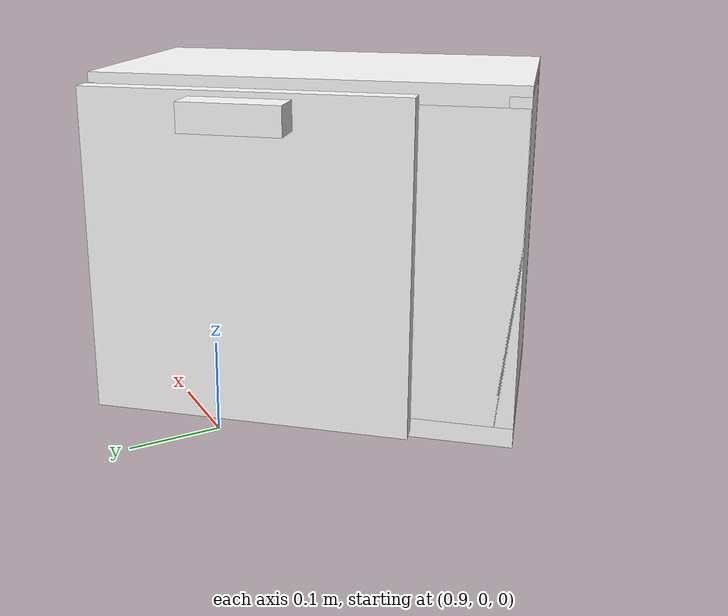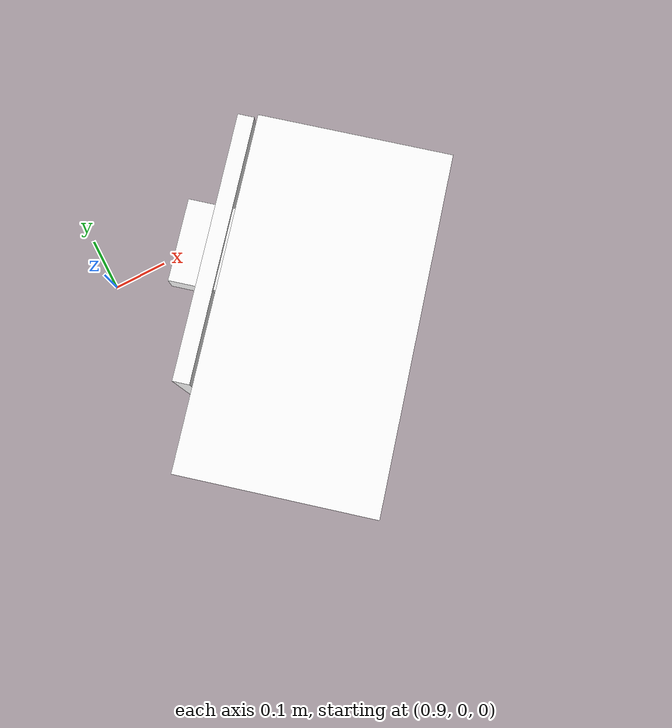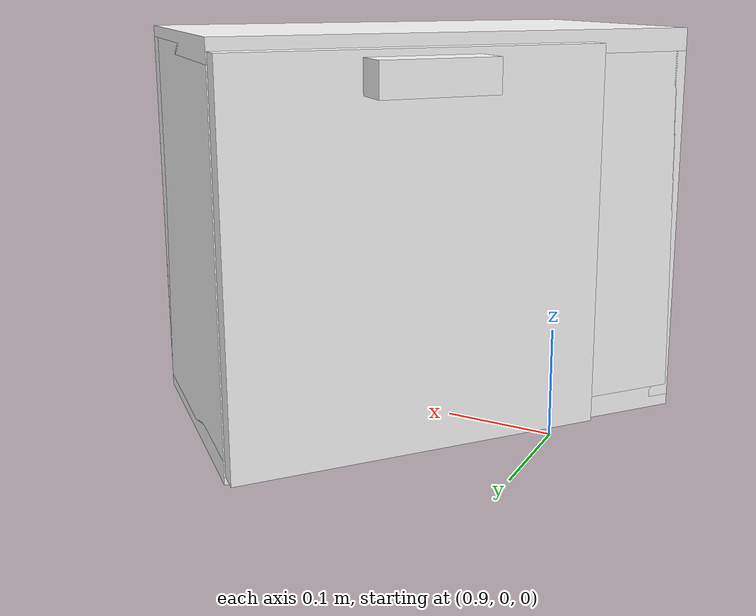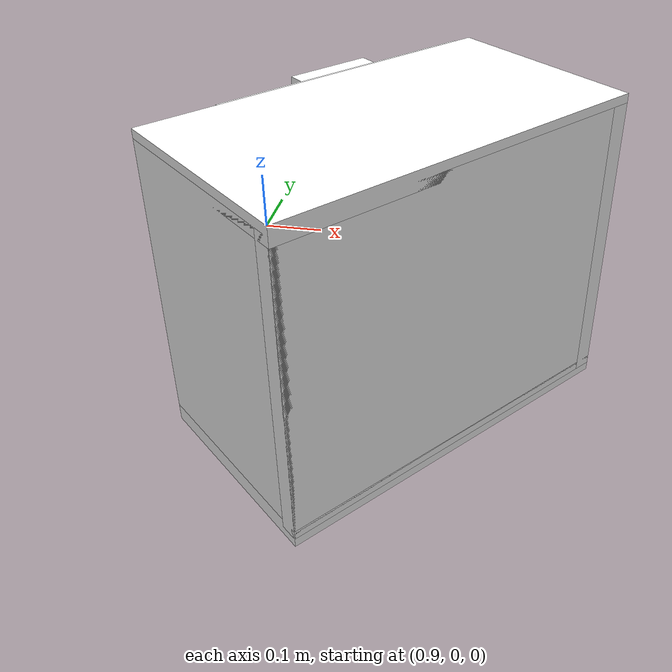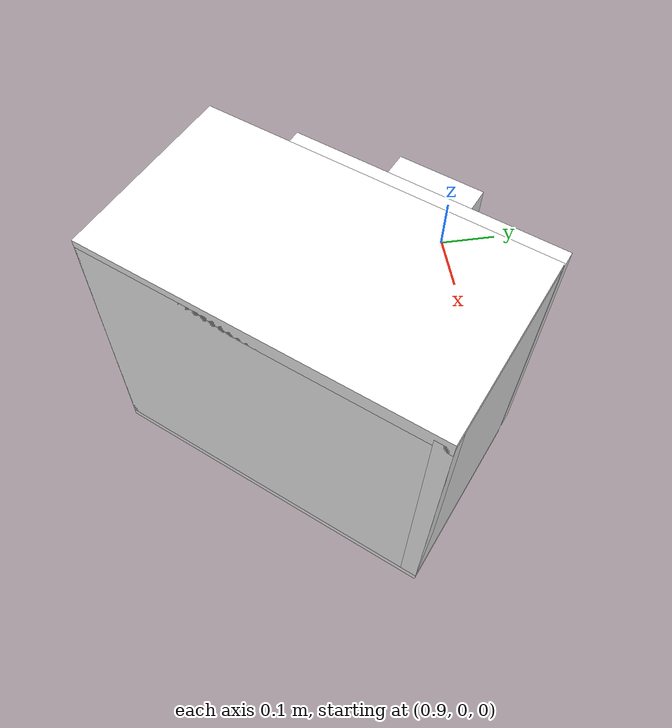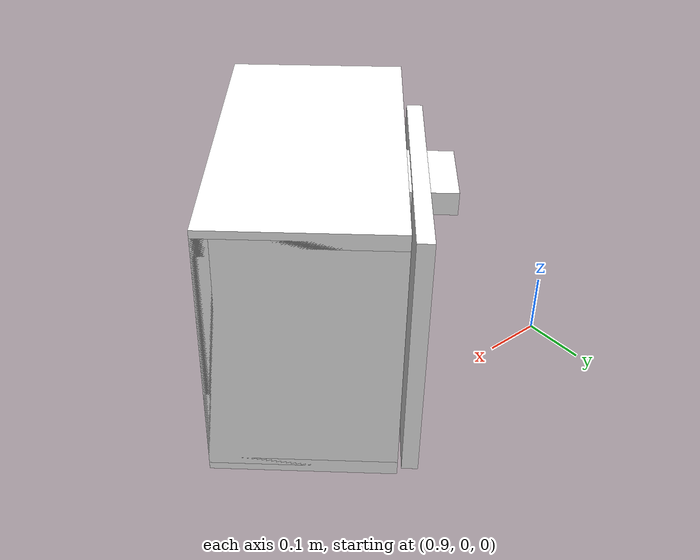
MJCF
<mujoco model="cabinet">
    <compiler angle="radian" eulerseq='zxy' />
    <option gravity = "0 0 0" />
    <option>
        <flag contact = "disable"/>
    </option>
    <statistic	extent="1.0" center="0.0 0.0 0.0"/>
    <visual>
        <map fogstart="3" fogend="5" force="0.1" znear=" 0.100000 " zfar=" 12.000000 "/>
    </visual>
    <size njmax="500" nconmax="100" />
    <actuator>
        <velocity joint="bottom_left_hinge" name="viva_revolution" kv='10'></velocity>
    </actuator>
    <asset>
        <texture builtin="flat" name="tabletex" height="32" width="32" rgb1="1 1 1" type="cube"></texture>
        <texture builtin="flat" name="objtex" height="32" width="32" rgb1="1 1 1" type="cube"></texture>
        <texture builtin="flat" name="handletex" height="32" width="32" rgb1="1 1 1" type="cube"></texture>
        <texture builtin="flat" name="wallpaper" height="32" width="32" rgb1="1 1 1" type="cube"></texture>
        <texture builtin="flat" name="kp" height="32" width="32" rgb1="1 1 1" type="cube"></texture>
        <material name="geomTable" shininess="0.03" specular="0.75" texture="tabletex"></material>
        <material name="geomObj" shininess="0.03" specular="0.75" texture="objtex"></material>
        <material name="geomHandle" shininess="0.03" specular="0.75" texture="handletex"></material>
        <material name="bg" shininess="0.03" specular="0.75" texture="wallpaper"></material>
        <material name="geomKeypad" shininess="0.03" specular="0.75" texture="kp"></material>
    </asset>
    <worldbody>
        <body name="cabinet_bottom" pos= " 1.178467 -0.276724 -0.101526 "  quat= " 0.346217 0.000000 0.000000 0.938154" >
            <inertial pos="0 0 0" mass="1" diaginertia="1 1 1" />
            <geom size= " 0.153043 0.280195 0.013327 "  type="box" material="geomObj" name="b"/>
            <body name="cabinet_left" pos= " 0.000000 -0.266868 0.219784 " >
                <inertial pos="0 0 0" mass="1" diaginertia="1 1 1" />
                <geom size= " 0.153043 0.013327 0.219784 "  type="box" material="geomObj" name="c" />
            </body>
            <body name="cabinet_right" pos= " 0.000000 0.266868 0.219784 " >
                <inertial pos="0 0 0" mass="1" diaginertia="1 1 1" />
                <geom size= " 0.153043 0.013327 0.219784 "  type="box" material="geomObj" name="d" />
            </body>
            <body name="cabinet_top" pos= " 0.000000 0.000000 0.439568 " >
                <inertial pos="0 0 0" mass="1" diaginertia="1 1 1" />
                <geom size= " 0.153043 0.280195 0.013327 "  type="box" material="geomObj" name="e"/>
            </body>
            <body name="cabinet_back" pos= " -0.139716 0.000000 0.219784 "  >
                <inertial pos="0 0 0" mass="1" diaginertia="1 1 1" />
                <geom size= " 0.013327 0.280195 0.219784 "  type="box" material="geomObj" name="f" />
            </body>
            <body name="cabinet_keypad" pos= " 0.013327 0.213284 0.219784 " >
                <inertial pos="0 0 0" mass="1" diaginertia="1 1 1" />
                <geom size= " 0.139716 0.065910 0.206457 "  type="box" material="geomKeypad" name="keypizzlemynizzle" />
            </body>
            <body name="cabinet_left_hinge" pos= " 0.153043 -0.065910 0.000000 " >
                <inertial pos= " 0.020000 0.000000 0.219784 "  mass="1" diaginertia="1 1 1" />
                <joint name="bottom_left_hinge" type="hinge" pos="0 0 0" axis="0 1 0" limited="true" range= "0 2.3"  />
                <geom size= " 0.013327 0.214284 0.219784 "  pos= " 0.020000 0.000000 0.219784 "  type="box" material="geomObj" name="g"/>
                <body name="handle_link" pos= " 0.038261 0.000000 0.412914 " >
                    <inertial pos="0 0 0" mass="1" diaginertia="1 1 1" />
                    <geom size= " 0.039080 0.065910 0.019027 "  type="box" material="geomHandle" name="h"/>
                </body>
            </body>
        </body>
        <body name="external_camera_body_0" pos="0.0 0 0.00">
            <camera euler="-1.57 1.57 0.0" fovy=" 54.280851 " name="external_camera_0" pos="0.0 0 0"></camera>
            <inertial pos= " 0.00 0.0 0.000000 " mass="1" diaginertia="1 1 1" />
            <joint name="cam_j" pos="0.0 0 0" axis = "1 0 0" type="free" />
        </body>
    </worldbody>
</mujoco>
